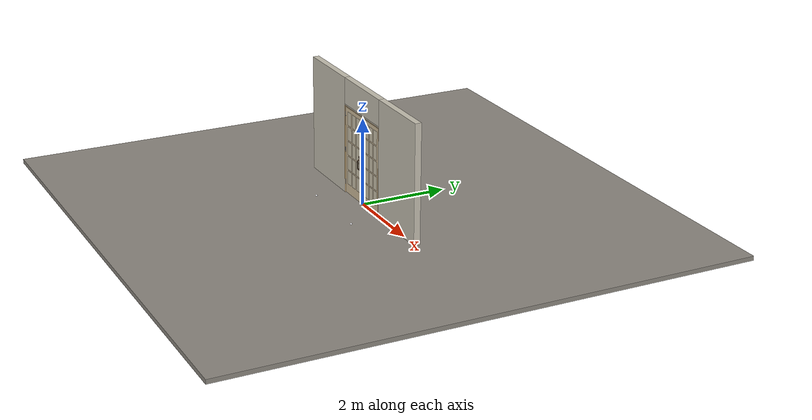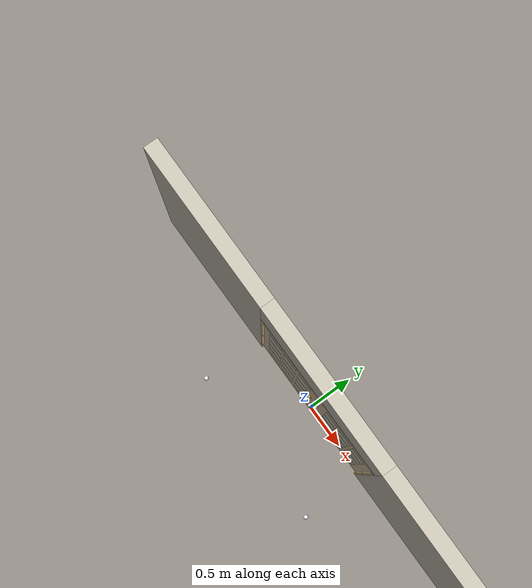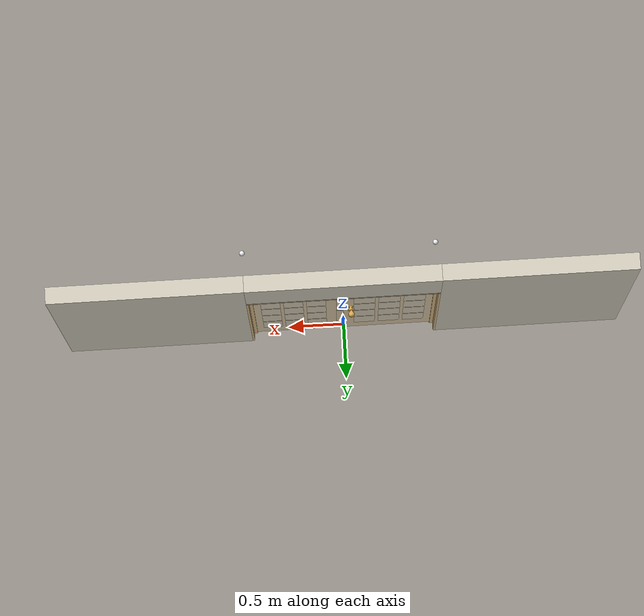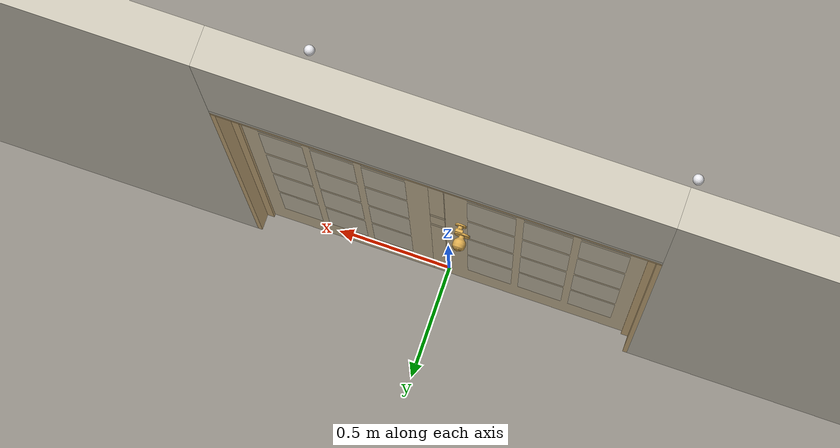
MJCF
<?xml version="1.0" ?>
<mujoco model="db0929_swing_double_full">
  <compiler angle="radian" meshdir="../../hardware" texturedir="../../textures" autolimits="true" inertiafromgeom="false"/>
  <option timestep="0.002" integrator="implicitfast" cone="elliptic" impratio="10" noslip_iterations="3">
    <flag multiccd="enable"/>
  </option>
  <size memory="16M"/>
  <default>
    <geom condim="4" solref="0.005 1" solimp="0.95 0.99 0.001"/>
    <joint solreflimit="0.005 1" solimplimit="0.95 0.99 0.001"/>
    <tendon solreflimit="0.005 1"/>
    <equality solref="0.002 1"/>
  </default>
  <visual>
    <headlight ambient="0.4 0.4 0.4" diffuse="0.7 0.7 0.7" specular="0.2 0.2 0.2"/>
    <quality shadowsize="4096"/>
    <map znear="0.01" zfar="60"/>
  </visual>
  <asset>
    <mesh name="cyl_face_e9e5036966" file="cyl_face_e9e5036966.obj"/>
    <mesh name="handleset_beb5526ad2" file="handleset_beb5526ad2.obj"/>
    <mesh name="hinge_e22b26c0c1" file="hinge_e22b26c0c1.obj"/>
    <mesh name="hinge_jamb_e1d088f8dc" file="hinge_jamb_e1d088f8dc.obj"/>
    <mesh name="knob_d1888f6f03" file="knob_d1888f6f03.obj"/>
    <mesh name="thumbturn_eb5c9899a3" file="thumbturn_eb5c9899a3.obj"/>
    <material name="mat_floor" rgba="0.55 0.53 0.5 1" specular="0.2" shininess="0.15" reflectance="0"/>
    <material name="mat_wall" rgba="0.78 0.76 0.7 1" specular="0.2" shininess="0.1" reflectance="0"/>
    <material name="mat_leaf_a" rgba="0.82 0.75 0.62 1" specular="0.2" shininess="0.51" reflectance="0"/>
    <material name="mat_glass" rgba="0.85 0.92 0.95 0.25" specular="0.2" shininess="0.95" reflectance="0.1"/>
    <material name="mat_hinge" rgba="0.65 0.66 0.68 1" specular="0.74" shininess="0.5" reflectance="0.36"/>
    <material name="mat_op_bronze" rgba="0.3 0.22 0.15 1" specular="0.74" shininess="0.5" reflectance="0.36"/>
    <material name="mat_op_brass" rgba="0.85 0.66 0.3 1" specular="0.8" shininess="0.75" reflectance="0.4"/>
    <material name="mat_trim" rgba="0.85 0.66 0.3 1" specular="0.8" shininess="0.75" reflectance="0.4"/>
    <material name="mat_bolt" rgba="0.85 0.66 0.3 1" specular="0.8" shininess="0.75" reflectance="0.4"/>
    <material name="mat_deadbolt" rgba="0.85 0.66 0.3 1" specular="0.8" shininess="0.75" reflectance="0.4"/>
    <material name="mat_stop" rgba="0.9 0.9 0.92 1" specular="0.8" shininess="0.9" reflectance="0.4"/>
    <material name="mat_leaf_b" rgba="0.82 0.75 0.62 1" specular="0.2" shininess="0.51" reflectance="0"/>
    <material name="mat_frame" rgba="0.82 0.7 0.5 1" specular="0.2" shininess="0.45" reflectance="0"/>
    <texture name="skybox" type="skybox" builtin="gradient" rgb1="0.6 0.7 0.85" rgb2="0.9 0.92 0.95" width="256" height="256"/>
  </asset>
  <worldbody>
    <light name="sun" pos="1.5 -2.5 4" dir="-0.3 0.5 -0.8" directional="true" diffuse="0.8 0.8 0.8" specular="0.3 0.3 0.3" castshadow="true"/>
    <light name="fill" pos="-1.5 2.5 3" dir="0.3 -0.5 -0.7" directional="true" diffuse="0.35 0.35 0.4" castshadow="false"/>
    <camera name="robot_view" pos="0 -2.511687 1.734312" xyaxes="1 0 0 0 0.26963 0.962964" fovy="52"/>
    <camera name="far_view" pos="0 2.572687 1.734312" xyaxes="-1 0 0 0 -0.26963 0.962964" fovy="52"/>
    <camera name="iso" pos="-1.932062 -2.104938 2.141063" xyaxes="0.741536 -0.670913 0 0.242917 0.268487 0.932151" fovy="46"/>
    <camera name="detail_handle" pos="0.0735 -0.882 1.185" xyaxes="0.97561 0.219512 0 -0.070934 0.315262 0.94635" fovy="38"/>
    <geom name="floor" type="box" size="6 6 0.05" pos="0 0 -0.05" material="mat_floor" group="0" contype="1" conaffinity="1" friction="0.8 0.005 0.0001" density="2400"/>
    <geom name="wall_left" type="box" size="0.83175 0.0725 1.35" pos="-1.66825 0.0305 1.35" material="mat_wall" group="0" contype="1" conaffinity="1" friction="0.6 0.005 0.0001" density="800"/>
    <geom name="wall_right" type="box" size="0.83175 0.0725 1.35" pos="1.66825 0.0305 1.35" material="mat_wall" group="0" contype="1" conaffinity="1" friction="0.6 0.005 0.0001" density="800"/>
    <geom name="wall_header" type="box" size="0.8365 0.0725 0.303" pos="0 0.0305 2.397" material="mat_wall" group="0" contype="1" conaffinity="1" friction="0.6 0.005 0.0001" density="800"/>
    <geom name="hinge_0_jamb" type="mesh" mesh="hinge_jamb_e1d088f8dc" pos="-0.8145 -0.029 0.259" material="mat_hinge" group="1" contype="0" conaffinity="0" density="7850"/>
    <geom name="hinge_1_jamb" type="mesh" mesh="hinge_jamb_e1d088f8dc" pos="-0.8145 -0.029 1.025" material="mat_hinge" group="1" contype="0" conaffinity="0" density="7850"/>
    <geom name="hinge_2_jamb" type="mesh" mesh="hinge_jamb_e1d088f8dc" pos="-0.8145 -0.029 1.861" material="mat_hinge" group="1" contype="0" conaffinity="0" density="7850"/>
    <geom name="floor_stop_dome" type="sphere" size="0.025" pos="-0.894653 -0.715677 0" material="mat_stop" group="0" contype="1" conaffinity="1" friction="0.6 0.005 0.0001" density="7000"/>
    <geom name="hinge_0_jamb_2" type="mesh" mesh="hinge_jamb_e1d088f8dc" pos="0.8145 -0.029 0.259" quat="0 0 1 0" material="mat_hinge" group="1" contype="0" conaffinity="0" density="7850"/>
    <geom name="hinge_1_jamb_2" type="mesh" mesh="hinge_jamb_e1d088f8dc" pos="0.8145 -0.029 1.025" quat="0 0 1 0" material="mat_hinge" group="1" contype="0" conaffinity="0" density="7850"/>
    <geom name="hinge_2_jamb_2" type="mesh" mesh="hinge_jamb_e1d088f8dc" pos="0.8145 -0.029 1.861" quat="0 0 1 0" material="mat_hinge" group="1" contype="0" conaffinity="0" density="7850"/>
    <geom name="floor_stop_dome_2" type="sphere" size="0.025" pos="0.894653 -0.715677 0" material="mat_stop" group="0" contype="1" conaffinity="1" friction="0.6 0.005 0.0001" density="7000"/>
    <geom name="jamb_l" type="box" size="0.0095 0.0725 1.0225" pos="-0.827 0.0305 1.0225" material="mat_frame" group="0" contype="1" conaffinity="1" friction="0.6 0.005 0.0001" density="300"/>
    <geom name="jamb_r" type="box" size="0.0095 0.0725 1.0225" pos="0.827 0.0305 1.0225" material="mat_frame" group="0" contype="1" conaffinity="1" friction="0.6 0.005 0.0001" density="300"/>
    <geom name="jamb_head" type="box" size="0.8365 0.0725 0.0095" pos="0 0.0305 2.0545" material="mat_frame" group="0" contype="1" conaffinity="1" friction="0.6 0.005 0.0001" density="300"/>
    <geom name="head_stud" type="box" size="0.8365 0.0725 0.015" pos="0 0.0305 2.079" material="mat_wall" group="0" contype="1" conaffinity="1" friction="0.6 0.005 0.0001" density="500"/>
    <geom name="stop_l" type="box" size="0.015 0.006 1.0225" pos="-0.8025 0.0285 1.0225" material="mat_frame" group="0" contype="1" conaffinity="1" friction="0.6 0.005 0.0001" density="300"/>
    <geom name="stop_r" type="box" size="0.015 0.006 1.0225" pos="0.8025 0.0285 1.0225" material="mat_frame" group="0" contype="1" conaffinity="1" friction="0.6 0.005 0.0001" density="300"/>
    <geom name="stop_head" type="box" size="0.8175 0.006 0.015" pos="0 0.0285 2.03" material="mat_frame" group="0" contype="1" conaffinity="1" friction="0.6 0.005 0.0001" density="300"/>
    <site name="approach_point" pos="0 -1.5 0" quat="1 0 0 0" size="0.05" rgba="0.2 0.9 0.2 0.5" group="4"/>
    <site name="goal_point" pos="0 1.5 0" quat="1 0 0 0" size="0.05" rgba="0.2 0.9 0.2 0.5" group="4"/>
    <site name="door_plane_center" pos="0 0 1.0225" quat="1 0 0 0" size="0.02" rgba="0.2 0.9 0.2 0.5" group="4"/>
    <site name="approach_point_2" pos="0 -1.5 0" quat="1 0 0 0" size="0.05" rgba="0.2 0.9 0.2 0.5" group="4"/>
    <site name="goal_point_2" pos="0 1.5 0" quat="1 0 0 0" size="0.05" rgba="0.2 0.9 0.2 0.5" group="4"/>
    <site name="door_plane_center_2" pos="0 0 1.0225" quat="1 0 0 0" size="0.02" rgba="0.2 0.9 0.2 0.5" group="4"/>
    <site name="approach_point_3" pos="0 -1.5 0" quat="1 0 0 0" size="0.05" rgba="0.2 0.9 0.2 0.5" group="4"/>
    <site name="goal_point_3" pos="0 1.5 0" quat="1 0 0 0" size="0.05" rgba="0.2 0.9 0.2 0.5" group="4"/>
    <site name="door_plane_center_3" pos="0 0 1.0225" quat="1 0 0 0" size="0.02" rgba="0.2 0.9 0.2 0.5" group="4"/>
    <body name="leaf_a" pos="-0.8175 0 0">
      <inertial pos="0.413796 -0.005387 1.0179" mass="25.587835" quat="-0.493314 0.500525 0.500036 0.506043" diaginertia="1.679032053 8.171656266 9.830411138"/>
      <joint name="leaf_a_hinge" type="hinge" axis="0 0 -1" pos="0.003 -0.029 0" limited="true" range="0 1.658063" solreflimit="0.02 1" damping="0.210326" frictionloss="0.502153" armature="0.02"/>
      <geom name="leaf_a_slab" type="box" size="0.4065 0.022 1.016" pos="0.4095 0 1.025" material="mat_leaf_a" group="0" contype="1" conaffinity="1" friction="0.4 0.005 0.0001" density="1"/>
      <geom name="leaf_a_glass_0" type="box" size="0.0955 0.0228 0.158688" pos="0.1885 0 0.391208" material="mat_glass" group="1" contype="0" conaffinity="0" density="1"/>
      <geom name="leaf_a_glass_1" type="box" size="0.0955 0.0228 0.158688" pos="0.4095 0 0.391208" material="mat_glass" group="1" contype="0" conaffinity="0" density="1"/>
      <geom name="leaf_a_glass_2" type="box" size="0.0955 0.0228 0.158688" pos="0.6305 0 0.391208" material="mat_glass" group="1" contype="0" conaffinity="0" density="1"/>
      <geom name="leaf_a_glass_3" type="box" size="0.0955 0.0228 0.158688" pos="0.1885 0 0.738584" material="mat_glass" group="1" contype="0" conaffinity="0" density="1"/>
      <geom name="leaf_a_glass_4" type="box" size="0.0955 0.0228 0.158688" pos="0.4095 0 0.738584" material="mat_glass" group="1" contype="0" conaffinity="0" density="1"/>
      <geom name="leaf_a_glass_5" type="box" size="0.0955 0.0228 0.158688" pos="0.6305 0 0.738584" material="mat_glass" group="1" contype="0" conaffinity="0" density="1"/>
      <geom name="leaf_a_glass_6" type="box" size="0.0955 0.0228 0.158688" pos="0.1885 0 1.08596" material="mat_glass" group="1" contype="0" conaffinity="0" density="1"/>
      <geom name="leaf_a_glass_7" type="box" size="0.0955 0.0228 0.158688" pos="0.4095 0 1.08596" material="mat_glass" group="1" contype="0" conaffinity="0" density="1"/>
      <geom name="leaf_a_glass_8" type="box" size="0.0955 0.0228 0.158688" pos="0.6305 0 1.08596" material="mat_glass" group="1" contype="0" conaffinity="0" density="1"/>
      <geom name="leaf_a_glass_9" type="box" size="0.0955 0.0228 0.158688" pos="0.1885 0 1.433336" material="mat_glass" group="1" contype="0" conaffinity="0" density="1"/>
      <geom name="leaf_a_glass_10" type="box" size="0.0955 0.0228 0.158688" pos="0.4095 0 1.433336" material="mat_glass" group="1" contype="0" conaffinity="0" density="1"/>
      <geom name="leaf_a_glass_11" type="box" size="0.0955 0.0228 0.158688" pos="0.6305 0 1.433336" material="mat_glass" group="1" contype="0" conaffinity="0" density="1"/>
      <geom name="leaf_a_glass_12" type="box" size="0.0955 0.0228 0.158688" pos="0.1885 0 1.780712" material="mat_glass" group="1" contype="0" conaffinity="0" density="1"/>
      <geom name="leaf_a_glass_13" type="box" size="0.0955 0.0228 0.158688" pos="0.4095 0 1.780712" material="mat_glass" group="1" contype="0" conaffinity="0" density="1"/>
      <geom name="leaf_a_glass_14" type="box" size="0.0955 0.0228 0.158688" pos="0.6305 0 1.780712" material="mat_glass" group="1" contype="0" conaffinity="0" density="1"/>
      <geom name="hinge_0" type="mesh" mesh="hinge_e22b26c0c1" pos="0.003 -0.029 0.259" material="mat_hinge" group="1" contype="0" conaffinity="0" density="7850"/>
      <geom name="hinge_1" type="mesh" mesh="hinge_e22b26c0c1" pos="0.003 -0.029 1.025" material="mat_hinge" group="1" contype="0" conaffinity="0" density="7850"/>
      <geom name="hinge_2" type="mesh" mesh="hinge_e22b26c0c1" pos="0.003 -0.029 1.861" material="mat_hinge" group="1" contype="0" conaffinity="0" density="7850"/>
      <geom name="leaf_a_handleset_n" type="mesh" mesh="handleset_beb5526ad2" pos="0.711 -0.022 0.905" quat="0.707107 0.707107 0 0" material="mat_op_bronze" group="1" contype="0" conaffinity="0" density="3000"/>
      <geom name="leaf_a_handleset_col_n" type="capsule" size="0.011 0.09" pos="0.711 -0.082 0.905" material="mat_op_bronze" group="3" contype="1" conaffinity="1" rgba="0.8 0.3 0.3 0.25" friction="0.7 0.01 0.0001" density="3000"/>
      <geom name="leaf_a_latch_bolt_faceplate" type="box" size="0.0006 0.01235 0.0267" pos="0.8154 0 0.965" material="mat_bolt" group="1" contype="0" conaffinity="0" density="8500"/>
      <geom name="leaf_a_deadbolt_faceplate" type="box" size="0.0006 0.014 0.0245" pos="0.8154 0 1.14" material="mat_deadbolt" group="1" contype="0" conaffinity="0" density="8500"/>
      <geom name="leaf_a_deadbolt_cylinder_face" type="mesh" mesh="cyl_face_e9e5036966" pos="0.751 -0.022 1.14" quat="0.707107 0.707107 0 0" material="mat_deadbolt" group="1" contype="0" conaffinity="0" density="7100"/>
      <site name="leaf_a_handleset_grip_n" pos="0.711 -0.082 0.905" quat="1 0 0 0" size="0.012" rgba="0.2 0.9 0.2 0.5" group="4"/>
      <site name="leaf_a_edge_mid" pos="0.816 0 1.016" quat="1 0 0 0" size="0.02" rgba="0.2 0.9 0.2 0.5" group="4"/>
      <body name="leaf_a_handle" pos="0.746 0 0.965">
        <inertial pos="0 0.052948 0" mass="0.60261" quat="0.5 0.5 0.5 0.5" diaginertia="0.000156736 0.000451151 0.000451151"/>
        <joint name="leaf_a_handle_hinge" type="hinge" axis="0 -1 0" limited="true" range="0 0.87" damping="0.142525" frictionloss="0.038" stiffness="0.5" springref="-0.5" armature="0.01"/>
        <geom name="leaf_a_handle_spindle" type="cylinder" size="0.006 0.03" pos="0 0 0" quat="0.707107 -0.707107 0 0" material="mat_op_brass" group="1" contype="0" conaffinity="0" density="7850"/>
        <geom name="leaf_a_handle_knob_p" type="mesh" mesh="knob_d1888f6f03" pos="0 0.022 0" quat="-0.707107 0.707107 0 0" material="mat_op_brass" group="1" contype="0" conaffinity="0" density="3000"/>
        <geom name="leaf_a_handle_knob_col_p" type="sphere" size="0.0243" pos="0 0.0685 0" material="mat_op_brass" group="0" contype="1" conaffinity="1" friction="0.9 0.01 0.0001" density="3000"/>
        <geom name="leaf_a_handle_knob_neck_p" type="cylinder" size="0.011 0.012" pos="0 0.034 0" quat="0.707107 -0.707107 0 0" material="mat_op_brass" group="3" contype="1" conaffinity="1" rgba="0.8 0.3 0.3 0.25" friction="0.6 0.005 0.0001" density="3000"/>
        <site name="leaf_a_handle_grip_p" pos="0 0.0685 0" quat="1 0 0 0" size="0.012" rgba="0.2 0.9 0.2 0.5" group="4"/>
      </body>
      <body name="leaf_a_thumbpiece" pos="0.711 -0.04 1.077">
        <inertial pos="0 0.004 0" mass="0.05184" quat="-0.5 0.5 0.5 0.5" diaginertia="0.000006981 0.000007488 0.000009124"/>
        <joint name="leaf_a_thumbpiece_hinge" type="hinge" axis="-1 0 0" pos="0 0 0.02" limited="true" range="0 0.35" damping="0.219407" frictionloss="0.058" stiffness="1.2" springref="-0.416667" armature="0.01"/>
        <geom name="leaf_a_thumbpiece_geom" type="box" size="0.018 0.004 0.02" pos="0 0 0" material="mat_op_bronze" group="0" contype="1" conaffinity="1" friction="0.6 0.005 0.0001" density="3000"/>
        <geom name="leaf_a_thumbpiece_boss" type="box" size="0.01 0.012 0.006" pos="0 0.012 0" material="mat_op_bronze" group="1" contype="0" conaffinity="0" density="3000"/>
        <site name="leaf_a_thumb_push" pos="0 -0.005 0.01" quat="1 0 0 0" size="0.01" rgba="0.2 0.9 0.2 0.5" group="4"/>
      </body>
      <body name="leaf_a_latch_bolt" pos="0.816 0 0.965">
        <inertial pos="-0.00865 0 0" mass="0.041419" quat="0.92388 -0.382683 0 0" diaginertia="0.000000798 0.000005598 0.000005598"/>
        <joint name="leaf_a_latch_bolt_slide" type="slide" axis="-1 0 0" limited="true" range="0 0.0127" damping="2" frictionloss="0.3" stiffness="300" springref="-0.008333" armature="0.1"/>
        <geom name="leaf_a_latch_bolt_capsule" type="capsule" size="0.00635 0.015" pos="-0.00865 0 0" quat="0.707107 0 0.707107 0" material="mat_bolt" group="0" contype="1" conaffinity="1" friction="0.2 0.005 0.0001" density="8500"/>
      </body>
      <body name="leaf_a_deadbolt" pos="0.816 0 1.14">
        <inertial pos="-0.0277 0 0" mass="0.18836" quat="0 0 0.707107 0.707107" diaginertia="0.000013829 0.000052194 0.000057986"/>
        <joint name="leaf_a_deadbolt_slide" type="slide" axis="-1 0 0" limited="true" range="0 0.0254" damping="5" frictionloss="1.5" armature="0.1" ref="0.0254"/>
        <geom name="leaf_a_deadbolt_box" type="box" size="0.0277 0.008 0.0125" pos="-0.0277 0 0" material="mat_deadbolt" group="0" contype="1" conaffinity="1" friction="0.3 0.005 0.0001" density="8500"/>
      </body>
      <body name="leaf_a_deadbolt_thumbturn" pos="0.751 0.022 1.14">
        <inertial pos="0 0.012928 0" mass="0.178946" quat="0.707107 -0.000001 -0.000001 0.707107" diaginertia="0.000026045 0.000026215 0.000032438"/>
        <joint name="leaf_a_deadbolt_thumbturn_hinge" type="hinge" axis="0 -1 0" limited="true" range="0 1.5708" damping="0.05" frictionloss="0.35" armature="0.005" ref="1.5708"/>
        <geom name="leaf_a_deadbolt_thumbturn_mesh" type="mesh" mesh="thumbturn_eb5c9899a3" pos="0 0 0" quat="-0.499999 0.499999 0.500001 0.500001" material="mat_deadbolt" group="0" contype="1" conaffinity="1" friction="0.6 0.005 0.0001" density="7100"/>
        <geom name="leaf_a_deadbolt_thumbturn_col" type="box" size="0.006 0.012 0.016" pos="0 0.02 0" quat="0.707105 0 -0.707108 0" material="mat_deadbolt" group="3" contype="1" conaffinity="1" rgba="0.8 0.3 0.3 0.25" friction="0.6 0.005 0.0001" density="7100"/>
      </body>
    </body>
    <body name="leaf_b" pos="0.8175 0 0">
      <inertial pos="-0.355161 -0.001166 1.026721" mass="24.550164" quat="0.501515 -0.497582 0.502377 0.498511" diaginertia="1.301663788 8.580857926 9.873549267"/>
      <joint name="leaf_b_hinge" type="hinge" axis="0 0 1" pos="-0.003 -0.029 0" limited="true" range="0 0.001" solreflimit="0.02 1" damping="0.210326" frictionloss="0.502153" armature="0.02"/>
      <geom name="leaf_b_edge_965_wall_n" type="box" size="0.03 0.007075 0.0167" pos="-0.786 0.014925 0.965" material="mat_leaf_b" group="0" contype="1" conaffinity="1" friction="0.6 0.005 0.0001" density="1"/>
      <geom name="leaf_b_edge_965_wall_p" type="box" size="0.03 0.008 0.0167" pos="-0.786 -0.01585 0.965" material="mat_leaf_b" group="0" contype="1" conaffinity="1" friction="0.6 0.005 0.0001" density="1"/>
      <geom name="leaf_b_edge_965_ramp" type="box" size="0.03 0.01649 0.0167" pos="-0.781861 -0.026388 0.965" quat="0.977148 0 0 0.212558" material="mat_leaf_b" group="0" contype="1" conaffinity="1" friction="0.12 0.005 0.0001" density="1"/>
      <geom name="leaf_b_edge_965_back" type="box" size="0.02165 0.00785 0.0167" pos="-0.77765 0 0.965" material="mat_leaf_b" group="0" contype="1" conaffinity="1" friction="0.6 0.005 0.0001" density="1"/>
      <geom name="leaf_b_edge_1140_wall_n" type="box" size="0.03 0.00625 0.0155" pos="-0.786 0.01575 1.14" material="mat_leaf_b" group="0" contype="1" conaffinity="1" friction="0.6 0.005 0.0001" density="1"/>
      <geom name="leaf_b_edge_1140_wall_p" type="box" size="0.03 0.00625 0.0155" pos="-0.786 -0.01575 1.14" material="mat_leaf_b" group="0" contype="1" conaffinity="1" friction="0.6 0.005 0.0001" density="1"/>
      <geom name="leaf_b_edge_1140_back" type="box" size="0.0153 0.0095 0.0155" pos="-0.7713 0 1.14" material="mat_leaf_b" group="0" contype="1" conaffinity="1" friction="0.6 0.005 0.0001" density="1"/>
      <geom name="leaf_b_edge_seg_0" type="box" size="0.03 0.022 0.46965" pos="-0.786 0 0.47865" material="mat_leaf_b" group="0" contype="1" conaffinity="1" friction="0.6 0.005 0.0001" density="1"/>
      <geom name="leaf_b_edge_seg_1" type="box" size="0.03 0.022 0.0714" pos="-0.786 0 1.0531" material="mat_leaf_b" group="0" contype="1" conaffinity="1" friction="0.6 0.005 0.0001" density="1"/>
      <geom name="leaf_b_edge_seg_2" type="box" size="0.03 0.022 0.44275" pos="-0.786 0 1.59825" material="mat_leaf_b" group="0" contype="1" conaffinity="1" friction="0.6 0.005 0.0001" density="1"/>
      <geom name="leaf_b_slab" type="box" size="0.3765 0.022 1.016" pos="-0.3795 0 1.025" material="mat_leaf_b" group="0" contype="1" conaffinity="1" friction="0.4 0.005 0.0001" density="1"/>
      <geom name="leaf_b_glass_0" type="box" size="0.0855 0.0228 0.158688" pos="-0.1785 0 0.391208" material="mat_glass" group="1" contype="0" conaffinity="0" density="1"/>
      <geom name="leaf_b_glass_1" type="box" size="0.0855 0.0228 0.158688" pos="-0.3795 0 0.391208" material="mat_glass" group="1" contype="0" conaffinity="0" density="1"/>
      <geom name="leaf_b_glass_2" type="box" size="0.0855 0.0228 0.158688" pos="-0.5805 0 0.391208" material="mat_glass" group="1" contype="0" conaffinity="0" density="1"/>
      <geom name="leaf_b_glass_3" type="box" size="0.0855 0.0228 0.158688" pos="-0.1785 0 0.738584" material="mat_glass" group="1" contype="0" conaffinity="0" density="1"/>
      <geom name="leaf_b_glass_4" type="box" size="0.0855 0.0228 0.158688" pos="-0.3795 0 0.738584" material="mat_glass" group="1" contype="0" conaffinity="0" density="1"/>
      <geom name="leaf_b_glass_5" type="box" size="0.0855 0.0228 0.158688" pos="-0.5805 0 0.738584" material="mat_glass" group="1" contype="0" conaffinity="0" density="1"/>
      <geom name="leaf_b_glass_6" type="box" size="0.0855 0.0228 0.158688" pos="-0.1785 0 1.08596" material="mat_glass" group="1" contype="0" conaffinity="0" density="1"/>
      <geom name="leaf_b_glass_7" type="box" size="0.0855 0.0228 0.158688" pos="-0.3795 0 1.08596" material="mat_glass" group="1" contype="0" conaffinity="0" density="1"/>
      <geom name="leaf_b_glass_8" type="box" size="0.0855 0.0228 0.158688" pos="-0.5805 0 1.08596" material="mat_glass" group="1" contype="0" conaffinity="0" density="1"/>
      <geom name="leaf_b_glass_9" type="box" size="0.0855 0.0228 0.158688" pos="-0.1785 0 1.433336" material="mat_glass" group="1" contype="0" conaffinity="0" density="1"/>
      <geom name="leaf_b_glass_10" type="box" size="0.0855 0.0228 0.158688" pos="-0.3795 0 1.433336" material="mat_glass" group="1" contype="0" conaffinity="0" density="1"/>
      <geom name="leaf_b_glass_11" type="box" size="0.0855 0.0228 0.158688" pos="-0.5805 0 1.433336" material="mat_glass" group="1" contype="0" conaffinity="0" density="1"/>
      <geom name="leaf_b_glass_12" type="box" size="0.0855 0.0228 0.158688" pos="-0.1785 0 1.780712" material="mat_glass" group="1" contype="0" conaffinity="0" density="1"/>
      <geom name="leaf_b_glass_13" type="box" size="0.0855 0.0228 0.158688" pos="-0.3795 0 1.780712" material="mat_glass" group="1" contype="0" conaffinity="0" density="1"/>
      <geom name="leaf_b_glass_14" type="box" size="0.0855 0.0228 0.158688" pos="-0.5805 0 1.780712" material="mat_glass" group="1" contype="0" conaffinity="0" density="1"/>
      <geom name="hinge_0_2" type="mesh" mesh="hinge_e22b26c0c1" pos="-0.003 -0.029 0.259" quat="0 0 1 0" material="mat_hinge" group="1" contype="0" conaffinity="0" density="7850"/>
      <geom name="hinge_1_2" type="mesh" mesh="hinge_e22b26c0c1" pos="-0.003 -0.029 1.025" quat="0 0 1 0" material="mat_hinge" group="1" contype="0" conaffinity="0" density="7850"/>
      <geom name="hinge_2_2" type="mesh" mesh="hinge_e22b26c0c1" pos="-0.003 -0.029 1.861" quat="0 0 1 0" material="mat_hinge" group="1" contype="0" conaffinity="0" density="7850"/>
      <site name="leaf_b_edge_mid" pos="-0.816 0 1.016" quat="1 0 0 0" size="0.02" rgba="0.2 0.9 0.2 0.5" group="4"/>
    </body>
  </worldbody>
  <tendon>
    <fixed name="leaf_a_thumb_coupling" limited="true" range="0 10">
      <joint joint="leaf_a_latch_bolt_slide" coef="1"/>
      <joint joint="leaf_a_thumbpiece_hinge" coef="-0.039688"/>
    </fixed>
    <fixed name="leaf_a_latch_bolt_coupling" limited="true" range="0 10">
      <joint joint="leaf_a_latch_bolt_slide" coef="1"/>
      <joint joint="leaf_a_handle_hinge" coef="-0.015679"/>
    </fixed>
  </tendon>
  <equality>
    <joint name="leaf_a_deadbolt_couple" joint1="leaf_a_deadbolt_slide" joint2="leaf_a_deadbolt_thumbturn_hinge" polycoef="0 0.01617 0 0 0" active="true"/>
  </equality>
  <contact>
    <exclude body1="leaf_a_deadbolt" body2="leaf_a_deadbolt_thumbturn"/>
  </contact>
  <sensor>
    <jointpos name="leaf_a_hinge_pos" joint="leaf_a_hinge"/>
    <jointvel name="leaf_a_hinge_vel" joint="leaf_a_hinge"/>
    <jointpos name="leaf_a_handle_hinge_pos" joint="leaf_a_handle_hinge"/>
    <jointvel name="leaf_a_handle_hinge_vel" joint="leaf_a_handle_hinge"/>
    <jointpos name="leaf_a_thumbpiece_hinge_pos" joint="leaf_a_thumbpiece_hinge"/>
    <jointvel name="leaf_a_thumbpiece_hinge_vel" joint="leaf_a_thumbpiece_hinge"/>
    <jointpos name="leaf_a_latch_bolt_slide_pos" joint="leaf_a_latch_bolt_slide"/>
    <jointvel name="leaf_a_latch_bolt_slide_vel" joint="leaf_a_latch_bolt_slide"/>
    <jointpos name="leaf_a_deadbolt_slide_pos" joint="leaf_a_deadbolt_slide"/>
    <jointvel name="leaf_a_deadbolt_slide_vel" joint="leaf_a_deadbolt_slide"/>
    <jointpos name="leaf_a_deadbolt_thumbturn_hinge_pos" joint="leaf_a_deadbolt_thumbturn_hinge"/>
    <jointvel name="leaf_a_deadbolt_thumbturn_hinge_vel" joint="leaf_a_deadbolt_thumbturn_hinge"/>
    <jointpos name="leaf_b_hinge_pos" joint="leaf_b_hinge"/>
    <jointvel name="leaf_b_hinge_vel" joint="leaf_b_hinge"/>
  </sensor>
</mujoco>
